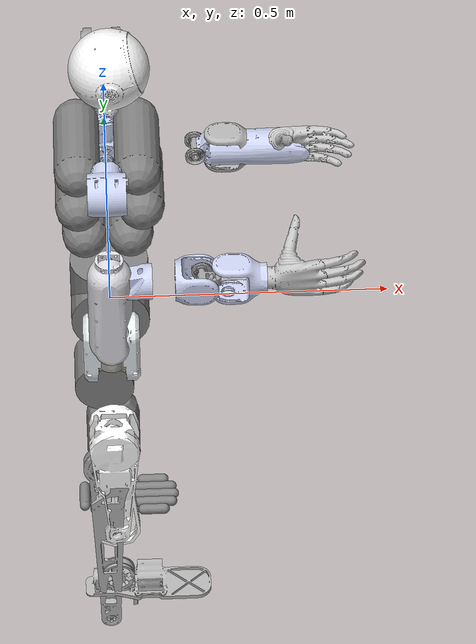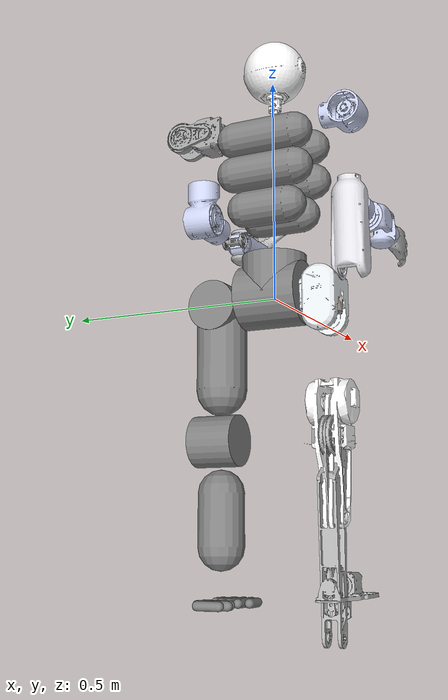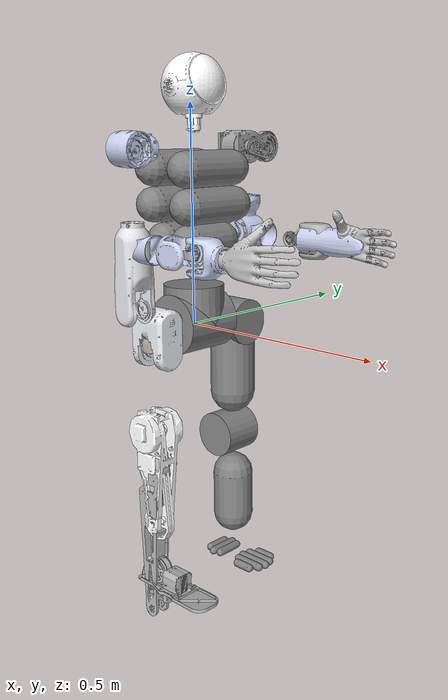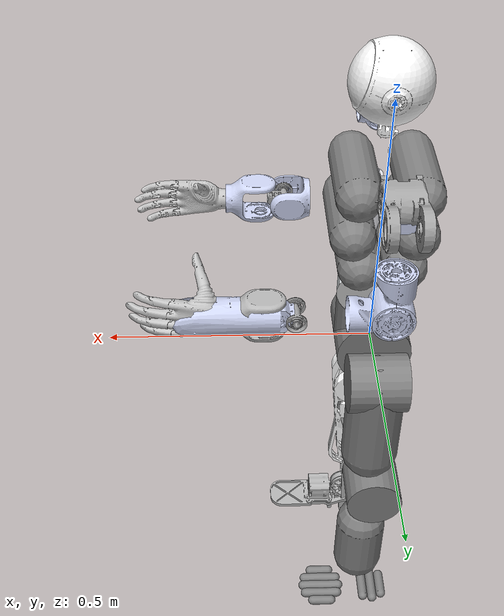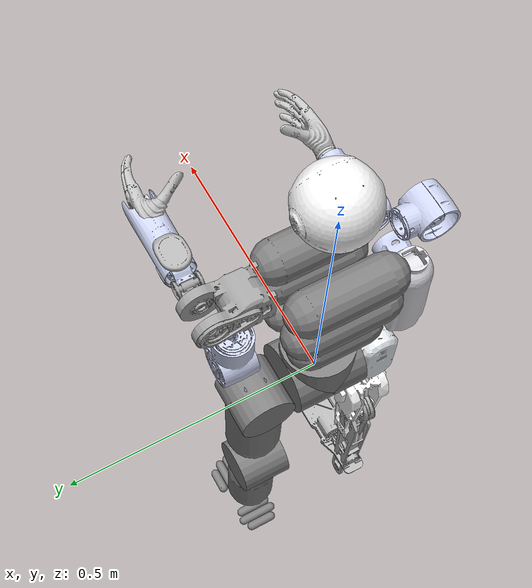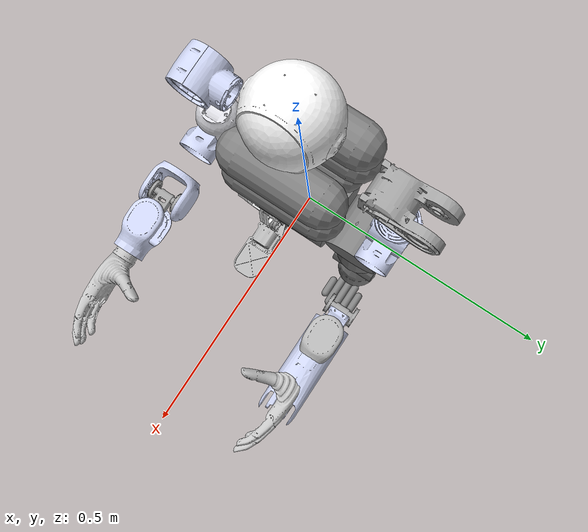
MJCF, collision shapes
<?xml version='1.0' encoding='utf-8'?>

<mujoco model="astro">
  <compiler angle="radian" meshdir="../meshes" />
  <asset>
    <mesh name="pelvis" content_type="model/stl" file="pelvis.stl" />
    <mesh name="left_hip_pitch_link" content_type="model/stl" file="left_hip_pitch_link.stl" />
    <mesh name="left_hip_roll_link" content_type="model/stl" file="left_hip_roll_link.stl" />
    <mesh name="left_hip_yaw_link" content_type="model/stl" file="left_hip_yaw_link.stl" />
    <mesh name="left_knee_link" content_type="model/stl" file="left_knee_link.stl" />
    <mesh name="left_ankle_pitch_link" content_type="model/stl" file="left_ankle_pitch_link.stl" />
    <mesh name="left_ankle_roll_link" content_type="model/stl" file="left_ankle_roll_link.stl" />
    <mesh name="right_hip_pitch_link" content_type="model/stl" file="right_hip_pitch_link.stl" />
    <mesh name="right_hip_roll_link" content_type="model/stl" file="right_hip_roll_link.stl" />
    <mesh name="right_hip_yaw_link" content_type="model/stl" file="right_hip_yaw_link.stl" />
    <mesh name="right_knee_link" content_type="model/stl" file="right_knee_link.stl" />
    <mesh name="right_ankle_pitch_link" content_type="model/stl" file="right_ankle_pitch_link.stl" />
    <mesh name="right_ankle_roll_link" content_type="model/stl" file="right_ankle_roll_link.stl" />
    <mesh name="waist_yaw_link" content_type="model/stl" file="waist_yaw_link.stl" />
    <mesh name="waist_pitch_link" content_type="model/stl" file="waist_pitch_link.stl" />
    <mesh name="waist_roll_link" content_type="model/stl" file="waist_roll_link.stl" />
    <mesh name="torso_link" content_type="model/stl" file="torso_link.stl" />
    <mesh name="left_shoulder_pitch_link" content_type="model/stl" file="left_shoulder_pitch_link.stl" />
    <mesh name="left_shoulder_roll_link" content_type="model/stl" file="left_shoulder_roll_link.stl" />
    <mesh name="left_shoulder_yaw_link" content_type="model/stl" file="left_shoulder_yaw_link.stl" />
    <mesh name="left_elbow_link" content_type="model/stl" file="left_elbow_link.stl" />
    <mesh name="left_wrist_roll_link" content_type="model/stl" file="left_wrist_roll_link.stl" />
    <mesh name="left_wrist_pitch_link" content_type="model/stl" file="left_wrist_pitch_link.stl" />
    <mesh name="left_wrist_yaw_link" content_type="model/stl" file="left_wrist_yaw_link.stl" />
    <mesh name="left_hand_link" content_type="model/stl" file="left_hand_link.stl" />
    <mesh name="right_shoulder_pitch_link" content_type="model/stl" file="right_shoulder_pitch_link.stl" />
    <mesh name="right_shoulder_roll_link" content_type="model/stl" file="right_shoulder_roll_link.stl" />
    <mesh name="right_shoulder_yaw_link" content_type="model/stl" file="right_shoulder_yaw_link.stl" />
    <mesh name="right_elbow_link" content_type="model/stl" file="right_elbow_link.stl" />
    <mesh name="right_wrist_roll_link" content_type="model/stl" file="right_wrist_roll_link.stl" />
    <mesh name="right_wrist_pitch_link" content_type="model/stl" file="right_wrist_pitch_link.stl" />
    <mesh name="right_wrist_yaw_link" content_type="model/stl" file="right_wrist_yaw_link.stl" />
    <mesh name="right_hand_link" content_type="model/stl" file="right_hand_link.stl" />
    <mesh name="head_link" content_type="model/stl" file="head_link.stl" />
    <mesh name="imu_2_link" content_type="model/stl" file="imu_2_link.stl" />
    <mesh name="imu_1_link" content_type="model/stl" file="imu_1_link.stl" />
    <mesh name="lidar_link" content_type="model/stl" file="lidar_link.stl" />
  </asset>
  <worldbody>
    <body name="pelvis">
      <inertial pos="-0.00010148 8.75937e-05 0.0281298" quat="0.999991 -0.00363139 -0.00159481 0.00167168" mass="4.26112" diaginertia="0.0153052 0.0125278 0.0101749" />
      <joint name="workbench_floating_base" type="free" />
      <geom name="pelvis_visual" type="mesh" contype="0" conaffinity="0" group="1" density="0" rgba="1 1 1 0.35" mesh="pelvis" />
      <geom name="imu_2_link_visual" pos="0 0 -0.04775" quat="1 0 0 0" type="mesh" contype="0" conaffinity="0" group="1" density="0" rgba="0.75294 0.75294 0.75294 1" mesh="imu_2_link" />
      <body name="left_hip_pitch_link" pos="0 0.067 0">
        <inertial pos="0.00540303 0.0584793 -0.00957408" quat="0.782422 0.622569 0.0138825 -0.00556922" mass="1.53371" diaginertia="0.00235202 0.00176815 0.00171555" />
        <joint name="left_hip_pitch_joint" pos="0 0 0" axis="0 1 0" range="-2.62 2.62" actuatorfrcrange="-130 130" />
        <geom name="left_hip_pitch_link_visual" type="mesh" contype="0" conaffinity="0" group="1" density="0" rgba="0.89804 0.91765 0.92941 1" mesh="left_hip_pitch_link" />
        <body name="left_hip_roll_link" pos="0 0.06 -0.01">
          <inertial pos="-0.0002456 0.00041208 -0.0864799" quat="0.728984 0.0141185 0.0179186 0.68415" mass="1.86496" diaginertia="0.00574173 0.00542032 0.00349984" />
          <joint name="left_hip_roll_joint" pos="0 0 0" axis="1 0 0" range="-0.26 2.79" actuatorfrcrange="-130 130" />
          <geom name="left_hip_roll_link_visual" type="mesh" contype="0" conaffinity="0" group="1" density="0" rgba="0.64706 0.61961 0.58824 1" mesh="left_hip_roll_link" />
          <body name="left_hip_yaw_link" pos="0 0 -0.137">
            <inertial pos="-0.00794518 0.0034944 -0.116523" quat="0.717173 0.0675151 0.0369337 0.692633" mass="2.20826" diaginertia="0.00971274 0.00904388 0.00293747" />
            <joint name="left_hip_yaw_joint" pos="0 0 0" axis="0 0 1" range="-1.57 3.67" actuatorfrcrange="-130 130" />
            <geom name="left_hip_yaw_link_visual" type="mesh" contype="0" conaffinity="0" group="1" density="0" rgba="1 1 1 1" mesh="left_hip_yaw_link" />
            <body name="left_knee_link" pos="-0.016 0 -0.153">
              <inertial pos="0.0169866 0.00065948 -0.121379" quat="0.999604 -0.00790385 -0.0116791 0.0243379" mass="2.46889" diaginertia="0.0162398 0.015829 0.00300923" />
              <joint name="left_knee_joint" pos="0 0 0" axis="0 1 0" range="-0.09 2.44" actuatorfrcrange="-130 130" />
              <geom name="left_knee_link_visual" type="mesh" contype="0" conaffinity="0" group="1" density="0" rgba="0.69804 0.69804 0.69804 1" mesh="left_knee_link" />
              <body name="left_ankle_pitch_link" pos="0.016 0 -0.283">
                <inertial pos="2.311e-05 0.00039883 -0.00517577" quat="0.452949 0.891512 -0.00328011 0.00571725" mass="0.134812" diaginertia="2.29409e-05 1.78135e-05 1.72256e-05" />
                <joint name="left_ankle_pitch_joint" pos="0 0 0" axis="0 1 0" range="-0.79 0.52" actuatorfrcrange="-60 60" />
                <geom name="left_ankle_pitch_link_visual" type="mesh" contype="0" conaffinity="0" group="1" density="0" rgba="0.69804 0.69804 0.69804 1" mesh="left_ankle_pitch_link" />
                <body name="left_ankle_roll_link" pos="0 0 -0.011">
                  <inertial pos="0.0120663 -8.752e-05 -0.0261527" quat="-0.00176296 0.734589 0.000988683 0.67851" mass="0.639628" diaginertia="0.00264657 0.00244122 0.000636158" />
                  <joint name="left_ankle_roll_joint" pos="0 0 0" axis="1 0 0" range="-0.35 0.35" actuatorfrcrange="-45 45" />
                  <geom name="left_ankle_roll_link_visual" type="mesh" contype="0" conaffinity="0" group="1" density="0" rgba="0.69804 0.69804 0.69804 1" mesh="left_ankle_roll_link" />
                  <geom name="left_ankle_roll_link_capsule_collision_1" type="capsule" contype="1" conaffinity="1" group="3" pos="0.072 0 -0.042" quat="0.707106781187 1.23259516441e-32 0.707106781187 1.23259516441e-32" size="0.01 0.039" />
                  <geom name="left_ankle_roll_link_capsule_collision_2" type="capsule" contype="1" conaffinity="1" group="3" pos="0.072 -0.02 -0.042" quat="0.707106781187 1.23259516441e-32 0.707106781187 1.23259516441e-32" size="0.01 0.035" />
                  <geom name="left_ankle_roll_link_capsule_collision_3" type="capsule" contype="1" conaffinity="1" group="3" pos="0.072 -0.04 -0.042" quat="0.707106781187 1.23259516441e-32 0.707106781187 1.23259516441e-32" size="0.01 0.02" />
                  <geom name="left_ankle_roll_link_capsule_collision_4" type="capsule" contype="1" conaffinity="1" group="3" pos="0.072 0.02 -0.042" quat="0.707106781187 1.23259516441e-32 0.707106781187 1.23259516441e-32" size="0.01 0.035" />
                  <geom name="left_ankle_roll_link_capsule_collision_5" type="capsule" contype="1" conaffinity="1" group="3" pos="0.072 0.04 -0.042" quat="0.707106781187 1.23259516441e-32 0.707106781187 1.23259516441e-32" size="0.01 0.02" />
                  <geom name="left_ankle_roll_link_capsule_collision_6" type="capsule" contype="1" conaffinity="1" group="3" pos="-0.02 0 -0.042" quat="0.707106781186 0.707106781187 0 0" size="0.01 0.03" />
                  <geom name="left_ankle_roll_link_capsule_collision_7" type="capsule" contype="1" conaffinity="1" group="3" pos="-0.04 0 -0.042" quat="0.707106781186 0.707106781187 0 0" size="0.01 0.035" />
                  <geom name="left_ankle_roll_link_capsule_collision_8" type="capsule" contype="1" conaffinity="1" group="3" pos="-0.06 0 -0.042" quat="0.707106781186 0.707106781187 0 0" size="0.01 0.025" />
                </body>
              </body>
              <geom name="left_knee_link_capsule_collision_1" type="capsule" contype="1" conaffinity="1" group="3" pos="0.015 0 -0.165" quat="1 0 0 0" size="0.05 0.055" />
            </body>
            <geom name="left_hip_yaw_link_cylinder_collision_1" type="cylinder" contype="1" conaffinity="1" group="3" pos="-0.015 0 -0.154" quat="0.707106781186 0.707106781187 0 0" size="0.055 0.05" />
          </body>
          <geom name="left_hip_roll_link_capsule_collision_1" type="capsule" contype="1" conaffinity="1" group="3" pos="0 0 -0.09" quat="1 0 0 0" size="0.055 0.09" />
          <geom name="left_hip_roll_link_cylinder_collision_1" type="cylinder" contype="1" conaffinity="1" group="3" pos="0 0 0" quat="0.707106781187 1.23259516441e-32 0.707106781187 1.23259516441e-32" size="0.055 0.055" />
        </body>
      </body>
      <body name="right_hip_pitch_link" pos="0 -0.067 0">
        <inertial pos="-0.00540303 -0.0584793 -0.00957408" quat="0.622569 0.782422 -0.00556922 0.0138825" mass="1.53371" diaginertia="0.00235202 0.00176815 0.00171555" />
        <joint name="right_hip_pitch_joint" pos="0 0 0" axis="0 1 0" range="-2.62 2.62" actuatorfrcrange="-130 130" />
        <geom name="right_hip_pitch_link_visual" type="mesh" contype="0" conaffinity="0" group="1" density="0" rgba="0.89804 0.91765 0.92941 1" mesh="right_hip_pitch_link" />
        <geom name="right_hip_pitch_link_collision" type="mesh" rgba="0.89804 0.91765 0.92941 1" mesh="right_hip_pitch_link" />
        <body name="right_hip_roll_link" pos="0 -0.06 -0.01">
          <inertial pos="-0.00051754 -0.00041269 -0.0864805" quat="0.729261 -0.00122624 -0.00447631 0.68422" mass="1.86496" diaginertia="0.00574135 0.00541642 0.00350329" />
          <joint name="right_hip_roll_joint" pos="0 0 0" axis="1 0 0" range="-2.79 0.26" actuatorfrcrange="-130 130" />
          <geom name="right_hip_roll_link_visual" type="mesh" contype="0" conaffinity="0" group="1" density="0" rgba="0.64706 0.61961 0.58824 1" mesh="right_hip_roll_link" />
          <geom name="right_hip_roll_link_collision" type="mesh" rgba="0.64706 0.61961 0.58824 1" mesh="right_hip_roll_link" />
          <body name="right_hip_yaw_link" pos="0 0 -0.137001">
            <inertial pos="-0.00797836 0.00366573 -0.116534" quat="0.71478 0.0655524 0.0392258 0.695164" mass="2.20826" diaginertia="0.00971618 0.00904485 0.00294248" />
            <joint name="right_hip_yaw_joint" pos="0 0 0" axis="0 0 1" range="-3.67 1.57" actuatorfrcrange="-130 130" />
            <geom name="right_hip_yaw_link_visual" type="mesh" contype="0" conaffinity="0" group="1" density="0" rgba="1 1 1 1" mesh="right_hip_yaw_link" />
            <geom name="right_hip_yaw_link_collision" type="mesh" rgba="1 1 1 1" mesh="right_hip_yaw_link" />
            <body name="right_knee_link" pos="-0.016 0 -0.153">
              <inertial pos="0.0169866 0.00065948 -0.121379" quat="0.999604 -0.00790385 -0.0116791 0.0243379" mass="2.46889" diaginertia="0.0162398 0.015829 0.00300923" />
              <joint name="right_knee_joint" pos="0 0 0" axis="0 1 0" range="-0.09 2.44" actuatorfrcrange="-130 130" />
              <geom name="right_knee_link_visual" type="mesh" contype="0" conaffinity="0" group="1" density="0" rgba="0.69804 0.69804 0.69804 1" mesh="right_knee_link" />
              <geom name="right_knee_link_collision" type="mesh" rgba="0.69804 0.69804 0.69804 1" mesh="right_knee_link" />
              <body name="right_ankle_pitch_link" pos="0.016 0 -0.283">
                <inertial pos="2.311e-05 0.00039883 -0.00517577" quat="0.452949 0.891512 -0.00328011 0.00571725" mass="0.134812" diaginertia="2.29409e-05 1.78135e-05 1.72256e-05" />
                <joint name="right_ankle_pitch_joint" pos="0 0 0" axis="0 1 0" range="-0.79 0.52" actuatorfrcrange="-60 60" />
                <geom name="right_ankle_pitch_link_visual" type="mesh" contype="0" conaffinity="0" group="1" density="0" rgba="0.69804 0.69804 0.69804 1" mesh="right_ankle_pitch_link" />
                <geom name="right_ankle_pitch_link_collision" type="mesh" rgba="0.69804 0.69804 0.69804 1" mesh="right_ankle_pitch_link" />
                <body name="right_ankle_roll_link" pos="0 0 -0.011">
                  <inertial pos="0.0120663 -8.752e-05 -0.0261527" quat="-0.00176296 0.734589 0.000988683 0.67851" mass="0.639628" diaginertia="0.00264657 0.00244122 0.000636158" />
                  <joint name="right_ankle_roll_joint" pos="0 0 0" axis="1 0 0" range="-0.35 0.35" actuatorfrcrange="-45 45" />
                  <geom name="right_ankle_roll_link_visual" type="mesh" contype="0" conaffinity="0" group="1" density="0" rgba="0.69804 0.69804 0.69804 1" mesh="right_ankle_roll_link" />
                  <geom name="right_ankle_roll_link_collision" type="mesh" rgba="0.69804 0.69804 0.69804 1" mesh="right_ankle_roll_link" />
                </body>
              </body>
            </body>
          </body>
        </body>
      </body>
      <body name="waist_yaw_link" pos="0 0 0.1123">
        <inertial pos="-0.00944642 5.635e-05 0.0131586" quat="0.000100345 0.709971 0.000902401 0.704231" mass="0.15813" diaginertia="0.000182397 0.00014771 7.64629e-05" />
        <joint name="waist_yaw_joint" pos="0 0 0" axis="0 0 1" range="-1.57 3.67" actuatorfrcrange="-130 130" />
        <geom name="waist_yaw_link_visual" type="mesh" contype="0" conaffinity="0" group="1" density="0" rgba="0.79216 0.81961 0.93333 1" mesh="waist_yaw_link" />
        <body name="waist_pitch_link" pos="0 0 0.030692">
          <inertial pos="0 0 4.816e-05" quat="0 0.707107 0 0.707107" mass="0.202314" diaginertia="0.00013239 8.116e-05 5.822e-05" />
          <joint name="waist_pitch_joint" pos="0 0 0" axis="0 1 0" range="-0.37 0.44" actuatorfrcrange="-60 60" />
          <geom name="waist_pitch_link_visual" type="mesh" contype="0" conaffinity="0" group="1" density="0" rgba="0.65098 0.61961 0.58824 1" mesh="waist_pitch_link" />
          <body name="waist_roll_link">
            <inertial pos="-0.00170665 0.00042795 0.171055" quat="0.999704 0.00299239 -0.023307 0.00630566" mass="9.29663" diaginertia="0.103169 0.0889893 0.0513757" />
            <joint name="waist_roll_joint" pos="0 0 0" axis="1 0 0" range="-0.28 0.28" actuatorfrcrange="-50 50" />
            <geom name="waist_roll_link_visual" type="mesh" contype="0" conaffinity="0" group="1" density="0" rgba="0.89804 0.91765 0.92941 1" mesh="waist_roll_link" />
            <geom name="torso_link_visual" pos="0 0 0.25801" type="mesh" contype="0" conaffinity="0" group="1" density="0" rgba="1 0.82745 0.40392 1" mesh="torso_link" />
            <geom name="lidar_link_visual" pos="0.058698 0.01529 0.27639" quat="0.499998 -0.5 -0.500002 0.5" type="mesh" contype="0" conaffinity="0" group="1" density="0" rgba="1 1 1 1" mesh="lidar_link" />
            <geom name="imu_1_link_visual" pos="0 0 0.068258" quat="-3.67321e-06 0 0 1" type="mesh" contype="0" conaffinity="0" group="1" density="0" rgba="0.75294 0.75294 0.75294 1" mesh="imu_1_link" />
            <body name="left_shoulder_pitch_link" pos="0 0.118 0.25801">
              <inertial pos="0.00469713 0.0518525 0.00019649" quat="0.542562 0.459974 -0.523849 0.468649" mass="0.702859" diaginertia="0.000578647 0.000549253 0.00043216" />
              <joint name="left_shoulder_pitch_joint" pos="0 0 0" axis="0 1 0" range="-2.79 2.79" actuatorfrcrange="-30 30" />
              <geom name="left_shoulder_pitch_link_visual" type="mesh" contype="0" conaffinity="0" group="1" density="0" rgba="0.62745 0.62745 0.62745 1" mesh="left_shoulder_pitch_link" />
              <geom name="left_shoulder_pitch_link_collision" type="mesh" rgba="0.62745 0.62745 0.62745 1" mesh="left_shoulder_pitch_link" />
              <body name="left_shoulder_roll_link" pos="0 0.057 0">
                <inertial pos="0.00090835 0.00027134 -0.072655" quat="0.708792 0.0137987 0.0265089 0.704784" mass="0.783243" diaginertia="0.00139932 0.00127152 0.000642854" />
                <joint name="left_shoulder_roll_joint" pos="0 0 0" axis="1 0 0" range="-0.26 2.62" actuatorfrcrange="-30 30" />
                <geom name="left_shoulder_roll_link_visual" type="mesh" contype="0" conaffinity="0" group="1" density="0" rgba="0.79216 0.81961 0.93333 1" mesh="left_shoulder_roll_link" />
                <geom name="left_shoulder_roll_link_collision" type="mesh" rgba="0.79216 0.81961 0.93333 1" mesh="left_shoulder_roll_link" />
                <body name="left_shoulder_yaw_link" pos="0 0 -0.114">
                  <inertial pos="-2.087e-05 0.00440036 -0.078017" quat="0.998348 0.0464608 -0.00419634 -0.0335296" mass="0.771787" diaginertia="0.001005 0.000954655 0.000514647" />
                  <joint name="left_shoulder_yaw_joint" pos="0 0 0" axis="0 0 1" range="-1.92 1.92" actuatorfrcrange="-30 30" />
                  <geom name="left_shoulder_yaw_link_visual" type="mesh" contype="0" conaffinity="0" group="1" density="0" rgba="0.79216 0.81961 0.93333 1" mesh="left_shoulder_yaw_link" />
                  <geom name="left_shoulder_yaw_link_collision" type="mesh" rgba="0.79216 0.81961 0.93333 1" mesh="left_shoulder_yaw_link" />
                  <body name="left_elbow_link" pos="0 0 -0.0895">
                    <inertial pos="0.0706738 0.00094748 -0.00025468" quat="0.018295 0.702408 -0.025296 0.71109" mass="0.750858" diaginertia="0.00132574 0.00119777 0.000631695" />
                    <joint name="left_elbow_joint" pos="0 0 0" axis="0 1 0" range="-0.52 1.66" actuatorfrcrange="-30 30" />
                    <geom name="left_elbow_link_visual" type="mesh" contype="0" conaffinity="0" group="1" density="0" rgba="0.79216 0.81961 0.93333 1" mesh="left_elbow_link" />
                    <geom name="left_elbow_link_collision" type="mesh" rgba="0.79216 0.81961 0.93333 1" mesh="left_elbow_link" />
                    <body name="left_wrist_roll_link" pos="0.114 0 0">
                      <inertial pos="0.0223644 -0.0017382 1.87e-06" quat="0.520102 0.479067 -0.520154 0.478987" mass="0.157721" diaginertia="0.0001973 0.000172749 0.000120951" />
                      <joint name="left_wrist_roll_joint" pos="0 0 0" axis="1 0 0" range="-1.92 1.92" actuatorfrcrange="-30 30" />
                      <geom name="left_wrist_roll_link_visual" type="mesh" contype="0" conaffinity="0" group="1" density="0" rgba="0.79216 0.81961 0.93333 1" mesh="left_wrist_roll_link" />
                      <geom name="left_wrist_roll_link_collision" type="mesh" rgba="0.79216 0.81961 0.93333 1" mesh="left_wrist_roll_link" />
                      <body name="left_wrist_pitch_link" pos="0.047 0 0">
                        <inertial pos="0.0224682 0.00317842 0.00316732" quat="0.374495 0.610641 0.245792 0.653037" mass="0.712577" diaginertia="0.000700472 0.00069796 0.000344788" />
                        <joint name="left_wrist_pitch_joint" pos="0 0 0" axis="0 1 0" range="-1.31 1.31" actuatorfrcrange="-10 10" />
                        <geom name="left_wrist_pitch_link_visual" type="mesh" contype="0" conaffinity="0" group="1" density="0" rgba="0.62745 0.62745 0.62745 1" mesh="left_wrist_pitch_link" />
                        <geom name="left_wrist_pitch_link_collision" type="mesh" rgba="0.62745 0.62745 0.62745 1" mesh="left_wrist_pitch_link" />
                        <body name="left_wrist_yaw_link" pos="0.044998 0 0">
                          <inertial pos="0.0649938 -0.000267269 0.00151895" quat="0.4954 0.506867 0.465782 0.529823" mass="0.32686" diaginertia="0.00109705 0.000964345 0.000292156" />
                          <joint name="left_wrist_yaw_joint" pos="0 0 0" axis="0 0 1" range="-1.31 1.31" actuatorfrcrange="-10 10" />
                          <geom name="left_wrist_yaw_link_visual" type="mesh" contype="0" conaffinity="0" group="1" density="0" rgba="0.69804 0.69804 0.69804 1" mesh="left_wrist_yaw_link" />
                          <geom name="left_wrist_yaw_link_collision" type="mesh" rgba="0.69804 0.69804 0.69804 1" mesh="left_wrist_yaw_link" />
                          <geom name="left_hand_link_visual" pos="0.067502 0 0" quat="1 0 0 0" type="mesh" contype="0" conaffinity="0" group="1" density="0" rgba="0.75294 0.75294 0.75294 1" mesh="left_hand_link" />
                          <geom name="left_hand_link_collision" pos="0.067502 0 0" quat="1 0 0 0" type="mesh" rgba="0.75294 0.75294 0.75294 1" mesh="left_hand_link" />
                        </body>
                      </body>
                    </body>
                  </body>
                </body>
              </body>
            </body>
            <body name="right_shoulder_pitch_link" pos="0 -0.118 0.25801">
              <inertial pos="0.00470069 -0.0518581 1.844e-05" quat="0.43144 0.523059 -0.497985 0.540628" mass="0.702872" diaginertia="0.000579283 0.000549143 0.000432184" />
              <joint name="right_shoulder_pitch_joint" pos="0 0 0" axis="0 1 0" range="-2.79 2.79" actuatorfrcrange="-30 30" />
              <geom name="right_shoulder_pitch_link_visual" type="mesh" contype="0" conaffinity="0" group="1" density="0" rgba="0.79216 0.81961 0.93333 1" mesh="right_shoulder_pitch_link" />
              <geom name="right_shoulder_pitch_link_collision" type="mesh" rgba="0.79216 0.81961 0.93333 1" mesh="right_shoulder_pitch_link" />
              <body name="right_shoulder_roll_link" pos="0 -0.057 0">
                <inertial pos="0.00091083 -0.00043354 -0.0726532" quat="0.7072 0.0269856 0.0134142 0.706371" mass="0.783311" diaginertia="0.00139943 0.00127153 0.000642781" />
                <joint name="right_shoulder_roll_joint" pos="0 0 0" axis="1 0 0" range="-2.62 0.26" actuatorfrcrange="-30 30" />
                <geom name="right_shoulder_roll_link_visual" type="mesh" contype="0" conaffinity="0" group="1" density="0" rgba="0.79216 0.81961 0.93333 1" mesh="right_shoulder_roll_link" />
                <geom name="right_shoulder_roll_link_collision" type="mesh" rgba="0.79216 0.81961 0.93333 1" mesh="right_shoulder_roll_link" />
                <body name="right_shoulder_yaw_link" pos="0 0 -0.114">
                  <inertial pos="-2.373e-05 -0.0043998 -0.0782548" quat="0.998583 -0.0405543 -0.00256787 0.034356" mass="0.771702" diaginertia="0.00100907 0.000957847 0.000515412" />
                  <joint name="right_shoulder_yaw_joint" pos="0 0 0" axis="0 0 1" range="-1.92 1.92" actuatorfrcrange="-30 30" />
                  <geom name="right_shoulder_yaw_link_visual" type="mesh" contype="0" conaffinity="0" group="1" density="0" rgba="0.86667 0.86667 0.8902 1" mesh="right_shoulder_yaw_link" />
                  <geom name="right_shoulder_yaw_link_collision" type="mesh" rgba="0.86667 0.86667 0.8902 1" mesh="right_shoulder_yaw_link" />
                  <body name="right_elbow_link" pos="0 0 -0.0895">
                    <inertial pos="0.0706722 -0.00095006 -0.00042388" quat="-0.0207436 0.702067 0.0229099 0.71144" mass="0.750925" diaginertia="0.00132582 0.00119779 0.000631642" />
                    <joint name="right_elbow_joint" pos="0 0 0" axis="0 1 0" range="-0.52 1.66" actuatorfrcrange="-30 30" />
                    <geom name="right_elbow_link_visual" type="mesh" contype="0" conaffinity="0" group="1" density="0" rgba="0.79216 0.81961 0.93333 1" mesh="right_elbow_link" />
                    <geom name="right_elbow_link_collision" type="mesh" rgba="0.79216 0.81961 0.93333 1" mesh="right_elbow_link" />
                    <body name="right_wrist_roll_link" pos="0.114 0 0">
                      <inertial pos="0.0223644 0.0017382 -1.87e-06" quat="0.478987 0.520154 -0.479067 0.520102" mass="0.157721" diaginertia="0.0001973 0.000172749 0.000120951" />
                      <joint name="right_wrist_roll_joint" pos="0 0 0" axis="1 0 0" range="-1.92 1.92" actuatorfrcrange="-30 30" />
                      <geom name="right_wrist_roll_link_visual" type="mesh" contype="0" conaffinity="0" group="1" density="0" rgba="0.79216 0.81961 0.93333 1" mesh="right_wrist_roll_link" />
                      <geom name="right_wrist_roll_link_collision" type="mesh" rgba="0.79216 0.81961 0.93333 1" mesh="right_wrist_roll_link" />
                      <body name="right_wrist_pitch_link" pos="0.047 0 0">
                        <inertial pos="0.0224677 -0.00317464 0.0031669" quat="0.65334 0.245315 0.610837 0.373959" mass="0.712582" diaginertia="0.000700486 0.000697993 0.000344801" />
                        <joint name="right_wrist_pitch_joint" pos="0 0 0" axis="0 1 0" range="-1.31 1.31" actuatorfrcrange="-10 10" />
                        <geom name="right_wrist_pitch_link_visual" type="mesh" contype="0" conaffinity="0" group="1" density="0" rgba="0.62745 0.62745 0.62745 1" mesh="right_wrist_pitch_link" />
                        <geom name="right_wrist_pitch_link_collision" type="mesh" rgba="0.62745 0.62745 0.62745 1" mesh="right_wrist_pitch_link" />
                        <body name="right_wrist_yaw_link" pos="0.044998 0 0">
                          <inertial pos="0.0649824 0.000272019 0.00151652" quat="0.529891 0.465787 0.506878 0.495311" mass="0.32682" diaginertia="0.00109676 0.000964068 0.000292095" />
                          <joint name="right_wrist_yaw_joint" pos="0 0 0" axis="0 0 1" range="-1.31 1.31" actuatorfrcrange="-10 10" />
                          <geom name="right_wrist_yaw_link_visual" type="mesh" contype="0" conaffinity="0" group="1" density="0" rgba="0.79216 0.81961 0.93333 1" mesh="right_wrist_yaw_link" />
                          <geom name="right_wrist_yaw_link_collision" type="mesh" rgba="0.79216 0.81961 0.93333 1" mesh="right_wrist_yaw_link" />
                          <geom name="right_hand_link_visual" pos="0.0675 0 0" quat="1 0 0 0" type="mesh" contype="0" conaffinity="0" group="1" density="0" rgba="0.75294 0.75294 0.75294 1" mesh="right_hand_link" />
                          <geom name="right_hand_link_collision" pos="0.0675 0 0" quat="1 0 0 0" type="mesh" rgba="0.75294 0.75294 0.75294 1" mesh="right_hand_link" />
                        </body>
                      </body>
                    </body>
                  </body>
                </body>
              </body>
            </body>
            <body name="head_link" pos="0.01 0 0.29401">
              <inertial pos="0.00627633 0.00013985 0.0777432" quat="0.685489 -0.157104 -0.148032 0.695349" mass="0.552031" diaginertia="0.00138259 0.00131157 0.00125166" />
              <joint name="head_joint" pos="0 0 0" axis="0 0 1" range="-0.61 0.61" actuatorfrcrange="-10 10" />
              <geom name="head_link_visual" type="mesh" contype="0" conaffinity="0" group="1" density="0" rgba="1 1 1 0.35" mesh="head_link" />
              <geom name="head_link_collision" type="mesh" rgba="1 1 1 0.35" mesh="head_link" />
            </body>
            <geom name="waist_roll_link_capsule_collision_1" type="capsule" contype="1" conaffinity="1" group="3" pos="0.04 0 0.055" quat="0.707106781186 0.707106781187 0 0" size="0.04 0.05" />
            <geom name="waist_roll_link_capsule_collision_2" type="capsule" contype="1" conaffinity="1" group="3" pos="-0.04 0 0.055" quat="0.707106781186 0.707106781187 0 0" size="0.04 0.05" />
            <geom name="waist_roll_link_capsule_collision_3" type="capsule" contype="1" conaffinity="1" group="3" pos="-0.05 0 0.135" quat="0.707106781186 0.707106781187 0 0" size="0.04 0.07" />
            <geom name="waist_roll_link_capsule_collision_4" type="capsule" contype="1" conaffinity="1" group="3" pos="0.06 0 0.135" quat="0.707106781187 0.707106781187 0 0" size="0.04 0.07" />
            <geom name="waist_roll_link_capsule_collision_5" type="capsule" contype="1" conaffinity="1" group="3" pos="-0.05 0 0.215" quat="0.707106781187 0.707106781187 0 0" size="0.04 0.07" />
            <geom name="waist_roll_link_capsule_collision_6" type="capsule" contype="1" conaffinity="1" group="3" pos="0.055 6.82818471471e-05 0.215" quat="0.707106781187 0.707106781187 0 0" size="0.04 0.07" />
          </body>
        </body>
      </body>
      <site name="frame__imu_1_link" type="sphere" size="0.001" rgba="0 0 0 0" pos="0 0 0.21125" quat="-3.67320510335e-06 0 0 0.999999999993" />
      <site name="frame__imu_2_link" type="sphere" size="0.001" rgba="0 0 0 0" pos="0 0 -0.0477500000001" quat="1 0 0 0" />
      <site name="frame__left_hand_link" type="sphere" size="0.001" rgba="0 0 0 0" pos="0.2735 0.175 0.197502" quat="1 0 0 0" />
      <site name="frame__lidar_link" type="sphere" size="0.001" rgba="0 0 0 0" pos="0.058698 0.01529 0.419382" quat="-0.499998163397 0.499999999997 0.500001836603 -0.499999999997" />
      <site name="frame__right_hand_link" type="sphere" size="0.001" rgba="0 0 0 0" pos="0.273498 -0.175 0.197502" quat="1 0 0 0" />
      <site name="frame__torso_link" type="sphere" size="0.001" rgba="0 0 0 0" pos="0 0 0.401002" quat="1 0 0 0" />
      <geom name="pelvis_cylinder_collision_1" type="cylinder" contype="1" conaffinity="1" group="3" pos="0 0 0.05" quat="1 0 0 0" size="0.07 0.045" />
      <geom name="pelvis_cylinder_collision_2" type="cylinder" contype="1" conaffinity="1" group="3" pos="0 0 0.008" quat="0.707106781186 0.707106781187 0 0" size="0.07 0.07" />
    </body>
  </worldbody>
</mujoco>
